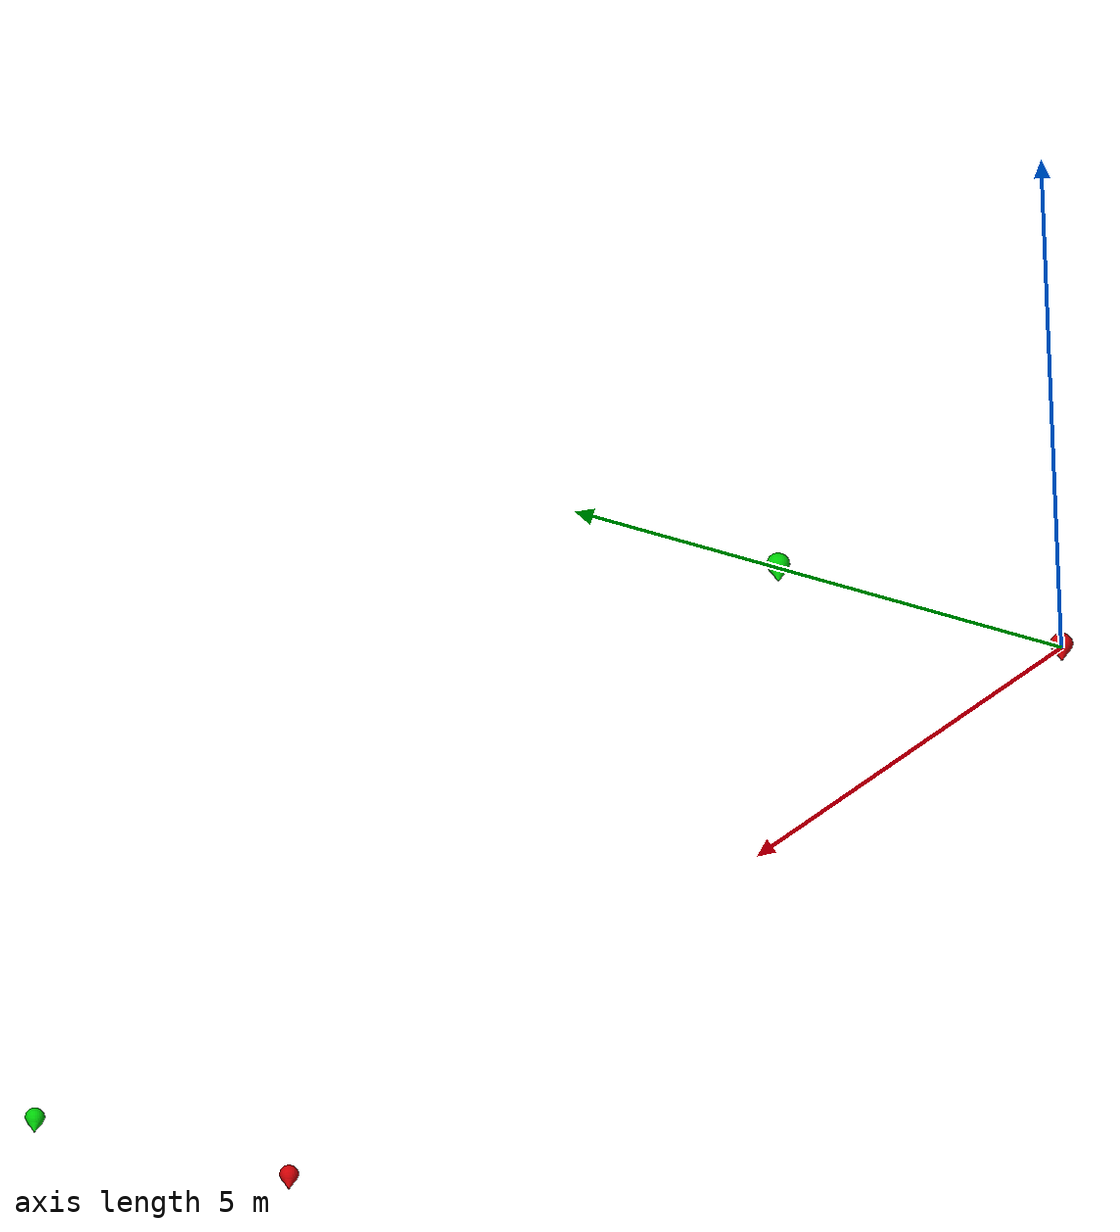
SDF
<?xml version="1.0" ?>
<sdf version="1.6">
  <model name="NavigationDemonstration">
    <link name="NavigationDemonstrationl">
      <pose>0 0 0 0 0 0</pose>
      <velocity_decay>
        <linear>0.001</linear>
        <angular>0.001</angular>
      </velocity_decay>
      <inertial>
        <pose>0 0 -10 0 0 0</pose>
        <mass>10</mass>
        <inertia>
          <ixx>10</ixx>
          <ixy>0</ixy>
          <ixz>0</ixz>
          <iyy>10</iyy>
          <iyz>0</iyz>
          <izz>10</izz>
        </inertia>
      </inertial>
      <collision name="NavigationDemonstrationc">
        <geometry>
	  <mesh><uri>model://NavigationDemonstration/mesh/NavigationDemonstration.dae</uri></mesh>
          <cylinder>
            <radius>0.25</radius>
            <length>1.0</length>
          </cylinder>
        </geometry>
      </collision>
      <visual name="NavigationDemonstrationv">
        <geometry>
	<mesh><uri>model://NavigationDemonstration/mesh/NavigationDemonstration.dae</uri></mesh>
        </geometry>
      </visual>
    </link>
  </model>
</sdf>
